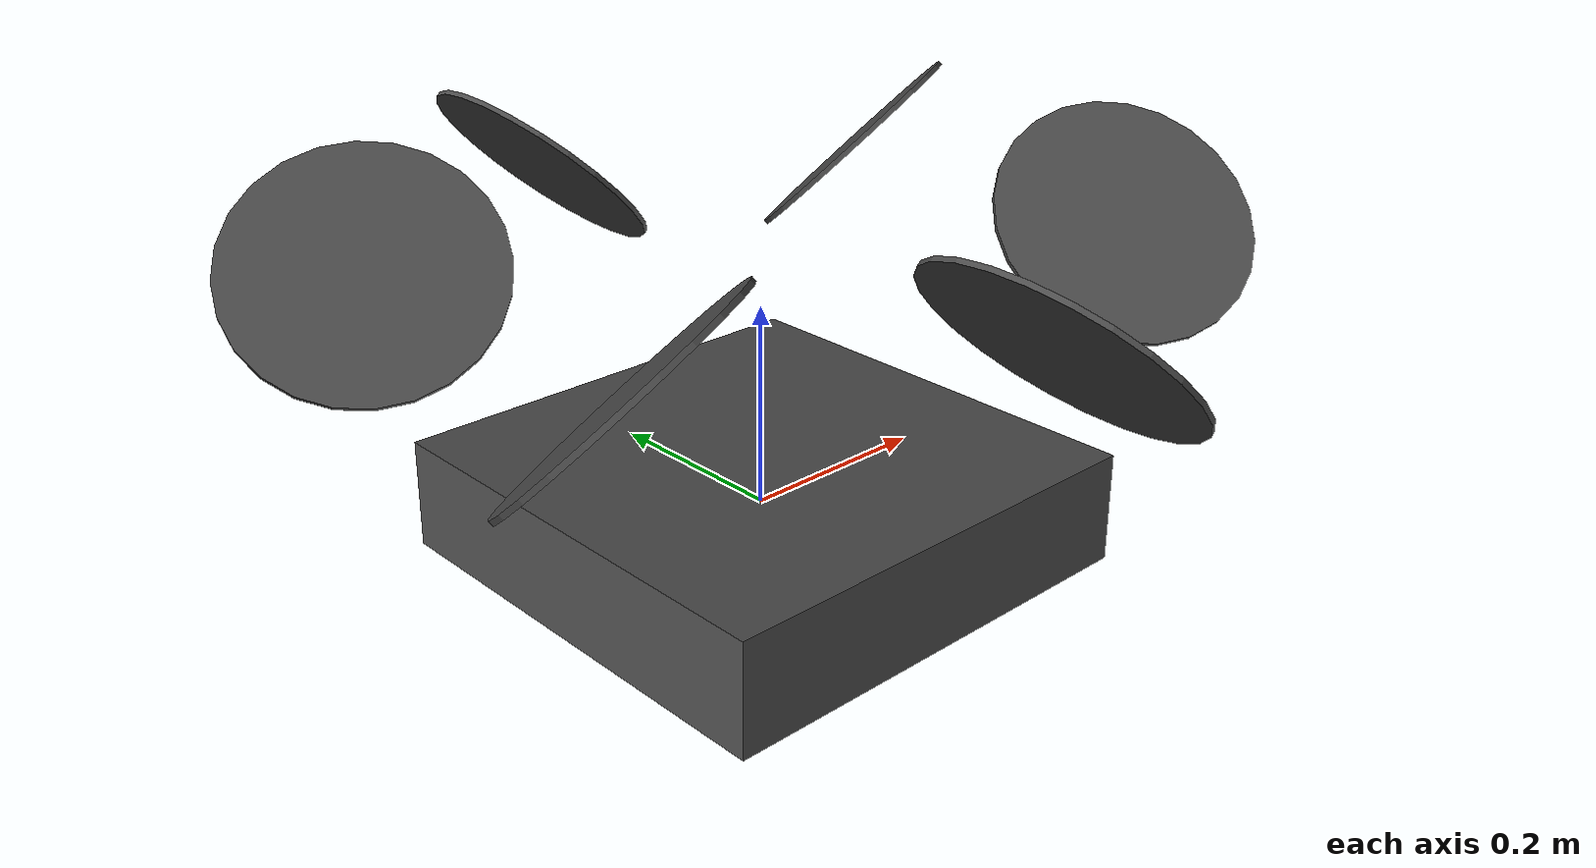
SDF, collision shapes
<!-- DO NOT EDIT: Generated from peach_fa.sdf.jinja -->
<?xml version="1.0"?>
<sdf version='1.6'>
  <model name='peach_fa'>
	<link name='base_link'>
      <pose>0 0 0 0 0 0</pose>
      <inertial>
        <pose>0 0 0 0 0 0</pose>
        <mass>1.5</mass>
        <inertia>
          <ixx>0.029125</ixx>
          <ixy>0</ixy>
          <ixz>0</ixz>
          <iyy>0.029125</iyy>
          <iyz>0</iyz>
          <izz>0.055225</izz>
        </inertia>
      </inertial>
      <collision name='base_link_collision'>
        <pose>0 0 0 0 0 0</pose>
        <geometry>
          <box>
            <size>0.47 0.47 0.11</size>
          </box>
        </geometry>
        <surface>
          <contact>
            <ode>
              <min_depth>0.001</min_depth>
              <max_vel>0</max_vel>
            </ode>
          </contact>
          <friction>
            <ode/>
          </friction>
        </surface>
      </collision>
      <visual name='base_link_visual'>
		<pose>0.34 -0.38 0 0 0 1.57</pose>
        <geometry>
          <mesh>
            <uri>model://peach_fa/meshes/peach_mesh.STL</uri>
          </mesh>
        </geometry>
        <material>
          <script>
            <name>Gazebo/DarkGrey</name>
            <uri>file://media/materials/scripts/gazebo.material</uri>
          </script>
        </material>
      </visual>
      <gravity>1</gravity>
      <velocity_decay/>
    </link>
    <link name='/imu_link'>
      <pose>0 0 0 0 0 0</pose>
      <inertial>
        <pose>0 0 0 0 0 0</pose>
        <mass>0.015</mass>
        <inertia>
          <ixx>1e-05</ixx>
          <ixy>0</ixy>
          <ixz>0</ixz>
          <iyy>1e-05</iyy>
          <iyz>0</iyz>
          <izz>1e-05</izz>
        </inertia>
      </inertial>
    </link>
    <joint name='/imu_joint' type='revolute'>
      <child>/imu_link</child>
      <parent>base_link</parent>
      <axis>
        <xyz>1 0 0</xyz>
        <limit>
          <lower>0</lower>
          <upper>0</upper>
          <effort>0</effort>
          <velocity>0</velocity>
        </limit>
        <dynamics>
          <spring_reference>0</spring_reference>
          <spring_stiffness>0</spring_stiffness>
        </dynamics>
        <use_parent_model_frame>1</use_parent_model_frame>
      </axis>
    </joint>

	<!-- ROTOR 0 -->
    <link name='rotor_0'>
	  <pose>0 -0.338 0.26 0 0.785398 0</pose>
      <inertial>
        <pose>0 0 0 0 0 0</pose>
        <mass>0.005</mass>
        <inertia>
          <ixx>9.75e-07</ixx>
          <ixy>0</ixy>
          <ixz>0</ixz>
          <iyy>0.000273104</iyy>
          <iyz>0</iyz>
          <izz>0.000274004</izz>
        </inertia>
      </inertial>
      <collision name='rotor_0_collision'>
        <pose>0 0 0 0 0 0</pose>
        <geometry>
          <cylinder>
            <length>0.005</length>
            <radius>0.128</radius>
          </cylinder>
        </geometry>
        <surface>
          <contact>
            <ode/>
          </contact>
          <friction>
            <ode/>
          </friction>
        </surface>
      </collision>
      <visual name='rotor_0_visual'>
        <geometry>
          <box><size>0.25 0.03 0.002</size></box>
        </geometry>
        <material>
           <ambient>0.3 0.3 0.3 01</ambient>
          <diffuse>0.3 0.3 0.3 01</diffuse>
        </material>
        <material>
          <script>
            <name>Gazebo/DarkGrey</name>
            <uri>file://media/materials/scripts/gazebo.material</uri>
          </script>
        </material>
      </visual>
      <gravity>1</gravity>
      <velocity_decay/>
    </link>
    <joint name='rotor_0_joint' type='revolute'>
      <child>rotor_0</child>
      <parent>base_link</parent>
      <axis>
        <xyz>0 0 1</xyz>
        <limit>
          <lower>-1e+16</lower>
          <upper>1e+16</upper>
        </limit>
        <dynamics>
          <spring_reference>0</spring_reference>
          <spring_stiffness>0</spring_stiffness>
        </dynamics>
      </axis>
    </joint>

	<!-- ROTOR 1 -->
    <link name='rotor_1'>
	  <pose>-0 0.338 0.26 0 -0.785398 3.14159</pose>
      <inertial>
        <pose>0 0 0 0 0 0</pose>
        <mass>0.005</mass>
        <inertia>
          <ixx>9.75e-07</ixx>
          <ixy>0</ixy>
          <ixz>0</ixz>
          <iyy>0.000273104</iyy>
          <iyz>0</iyz>
          <izz>0.000274004</izz>
        </inertia>
      </inertial>
      <collision name='rotor_1_collision'>
        <pose>0 0 0 0 0 0</pose>
        <geometry>
          <cylinder>
            <length>0.005</length>
            <radius>0.128</radius>
          </cylinder>
        </geometry>
        <surface>
          <contact>
            <ode/>
          </contact>
          <friction>
            <ode/>
          </friction>
        </surface>
      </collision>
      <visual name='rotor_1_visual'>
        <geometry>
          <box><size>0.25 0.03 0.002</size></box>
        </geometry>
        <material>
           <ambient>0.3 0.3 0.3 01</ambient>
          <diffuse>0.3 0.3 0.3 01</diffuse>
        </material>
        <material>
          <script>
            <name>Gazebo/DarkGrey</name>
            <uri>file://media/materials/scripts/gazebo.material</uri>
          </script>
        </material>
      </visual>
      <gravity>1</gravity>
      <velocity_decay/>
    </link>
    <joint name='rotor_1_joint' type='revolute'>
      <child>rotor_1</child>
      <parent>base_link</parent>
      <axis>
        <xyz>0 0 1</xyz>
        <limit>
          <lower>-1e+16</lower>
          <upper>1e+16</upper>
        </limit>
        <dynamics>
          <spring_reference>0</spring_reference>
          <spring_stiffness>0</spring_stiffness>
        </dynamics>
      </axis>
    </joint>

	<!-- ROTOR 2 -->
    <link name='rotor_2'>
	  <pose>0.3 0.18 0.26 0 0.785398 2.0944</pose>
      <inertial>
        <pose>0 0 0 0 0 0</pose>
        <mass>0.005</mass>
        <inertia>
          <ixx>9.75e-07</ixx>
          <ixy>0</ixy>
          <ixz>0</ixz>
          <iyy>0.000273104</iyy>
          <iyz>0</iyz>
          <izz>0.000274004</izz>
        </inertia>
      </inertial>
      <collision name='rotor_2_collision'>
        <pose>0 0 0 0 0 0</pose>
        <geometry>
          <cylinder>
            <length>0.005</length>
            <radius>0.128</radius>
          </cylinder>
        </geometry>
        <surface>
          <contact>
            <ode/>
          </contact>
          <friction>
            <ode/>
          </friction>
        </surface>
      </collision>
      <visual name='rotor_2_visual'>
        <geometry>
          <box><size>0.25 0.03 0.002</size></box>
        </geometry>
        <material>
           <ambient>0.3 0.3 0.3 01</ambient>
          <diffuse>0.3 0.3 0.3 01</diffuse>
        </material>
        <material>
          <script>
            <name>Gazebo/DarkGrey</name>
            <uri>file://media/materials/scripts/gazebo.material</uri>
          </script>
        </material>
      </visual>
      <gravity>1</gravity>
      <velocity_decay/>
    </link>
    <joint name='rotor_2_joint' type='revolute'>
      <child>rotor_2</child>
      <parent>base_link</parent>
      <axis>
        <xyz>0 0 1</xyz>
        <limit>
          <lower>-1e+16</lower>
          <upper>1e+16</upper>
        </limit>
        <dynamics>
          <spring_reference>0</spring_reference>
          <spring_stiffness>0</spring_stiffness>
        </dynamics>
      </axis>
    </joint>

	<!-- ROTOR 3 -->
    <link name='rotor_3'>
	  <pose>-0.3 -0.18 0.26 0 -0.785398 -1.0472</pose>
      <inertial>
        <pose>0 0 0 0 0 0</pose>
        <mass>0.005</mass>
        <inertia>
          <ixx>9.75e-07</ixx>
          <ixy>0</ixy>
          <ixz>0</ixz>
          <iyy>0.000273104</iyy>
          <iyz>0</iyz>
          <izz>0.000274004</izz>
        </inertia>
      </inertial>
      <collision name='rotor_3_collision'>
        <pose>0 0 0 0 0 0</pose>
        <geometry>
          <cylinder>
            <length>0.005</length>
            <radius>0.128</radius>
          </cylinder>
        </geometry>
        <surface>
          <contact>
            <ode/>
          </contact>
          <friction>
            <ode/>
          </friction>
        </surface>
      </collision>
      <visual name='rotor_3_visual'>
        <geometry>
          <box><size>0.25 0.03 0.002</size></box>
        </geometry>
        <material>
           <ambient>0.3 0.3 0.3 01</ambient>
          <diffuse>0.3 0.3 0.3 01</diffuse>
        </material>
        <material>
          <script>
            <name>Gazebo/DarkGrey</name>
            <uri>file://media/materials/scripts/gazebo.material</uri>
          </script>
        </material>
      </visual>
      <gravity>1</gravity>
      <velocity_decay/>
    </link>
    <joint name='rotor_3_joint' type='revolute'>
      <child>rotor_3</child>
      <parent>base_link</parent>
      <axis>
        <xyz>0 0 1</xyz>
        <limit>
          <lower>-1e+16</lower>
          <upper>1e+16</upper>
        </limit>
        <dynamics>
          <spring_reference>0</spring_reference>
          <spring_stiffness>0</spring_stiffness>
        </dynamics>
      </axis>
    </joint>

	<!-- ROTOR 4 -->
    <link name='rotor_4'>
	<pose>0.3 -0.18 0.26 0 -0.785398 1.0472</pose>
      <inertial>
        <pose>0 0 0 0 0 0</pose>
        <mass>0.005</mass>
        <inertia>
          <ixx>9.75e-07</ixx>
          <ixy>0</ixy>
          <ixz>0</ixz>
          <iyy>0.000273104</iyy>
          <iyz>0</iyz>
          <izz>0.000274004</izz>
        </inertia>
      </inertial>
      <collision name='rotor_4_collision'>
        <pose>0 0 0 0 0 0</pose>
        <geometry>
          <cylinder>
            <length>0.005</length>
            <radius>0.128</radius>
          </cylinder>
        </geometry>
        <surface>
          <contact>
            <ode/>
          </contact>
          <friction>
            <ode/>
          </friction>
        </surface>
      </collision>
      <visual name='rotor_4_visual'>
        <geometry>
          <box><size>0.25 0.03 0.002</size></box>
        </geometry>
        <material>
           <ambient>0.3 0.3 0.3 01</ambient>
          <diffuse>0.3 0.3 0.3 01</diffuse>
        </material>
        <material>
          <script>
            <name>Gazebo/DarkGrey</name>
            <uri>file://media/materials/scripts/gazebo.material</uri>
          </script>
        </material>
      </visual>
      <gravity>1</gravity>
      <velocity_decay/>
    </link>
    <joint name='rotor_4_joint' type='revolute'>
      <child>rotor_4</child>
      <parent>base_link</parent>
      <axis>
        <xyz>0 0 1</xyz>
        <limit>
          <lower>-1e+16</lower>
          <upper>1e+16</upper>
        </limit>
        <dynamics>
          <spring_reference>0</spring_reference>
          <spring_stiffness>0</spring_stiffness>
        </dynamics>
      </axis>
    </joint>

	<!-- ROTOR 5 -->
    <link name='rotor_5'>
	  <pose>-0.3 0.18 0.26 0 0.785398 -2.0944</pose>
      <inertial>
        <pose>0 0 0 0 0 0</pose>
        <mass>0.005</mass>
        <inertia>
          <ixx>9.75e-07</ixx>
          <ixy>0</ixy>
          <ixz>0</ixz>
          <iyy>0.000273104</iyy>
          <iyz>0</iyz>
          <izz>0.000274004</izz>
        </inertia>
      </inertial>
      <collision name='rotor_5_collision'>
        <pose>0 0 0 0 0 0</pose>
        <geometry>
          <cylinder>
            <length>0.005</length>
            <radius>0.128</radius>
          </cylinder>
        </geometry>
        <surface>
          <contact>
            <ode/>
          </contact>
          <friction>
            <ode/>
          </friction>
        </surface>
      </collision>
      <visual name='rotor_5_visual'>
        <geometry>
          <box><size>0.25 0.03 0.002</size></box>
        </geometry>
        <material>
           <ambient>0.3 0.3 0.3 01</ambient>
          <diffuse>0.3 0.3 0.3 01</diffuse>
        </material>
        <material>
          <script>
            <name>Gazebo/DarkGrey</name>
            <uri>file://media/materials/scripts/gazebo.material</uri>
          </script>
        </material>
      </visual>
      <gravity>1</gravity>
      <velocity_decay/>
    </link>
    <joint name='rotor_5_joint' type='revolute'>
      <child>rotor_5</child>
      <parent>base_link</parent>
      <axis>
        <xyz>0 0 1</xyz>
        <limit>
          <lower>-1e+16</lower>
          <upper>1e+16</upper>
        </limit>
        <dynamics>
          <spring_reference>0</spring_reference>
          <spring_stiffness>0</spring_stiffness>
        </dynamics>
      </axis>
    </joint>

    <plugin name='rosbag' filename='libgazebo_multirotor_base_plugin.so'>
      <robotNamespace/>
      <linkName>base_link</linkName>
      <rotorVelocitySlowdownSim>10</rotorVelocitySlowdownSim>
    </plugin>
    <plugin name='front_right_motor_model' filename='libgazebo_motor_model.so'>
      <robotNamespace/>
      <jointName>rotor_4_joint</jointName>
      <linkName>rotor_4</linkName>
      <turningDirection>ccw</turningDirection>
      <timeConstantUp>0.0125</timeConstantUp>
      <timeConstantDown>0.025</timeConstantDown>
      <maxRotVelocity>1100</maxRotVelocity>
      <motorConstant>5.84e-06</motorConstant>
      <momentConstant>0.06</momentConstant>
      <commandSubTopic>/gazebo/command/motor_speed</commandSubTopic>
      <motorNumber>4</motorNumber>
      <rotorDragCoefficient>0.000175</rotorDragCoefficient>
      <rollingMomentCoefficient>1e-06</rollingMomentCoefficient>
      <motorSpeedPubTopic>/motor_speed/4</motorSpeedPubTopic>
      <rotorVelocitySlowdownSim>10</rotorVelocitySlowdownSim>
    </plugin>
    <plugin name='back_left_motor_model' filename='libgazebo_motor_model.so'>
      <robotNamespace/>
      <jointName>rotor_5_joint</jointName>
      <linkName>rotor_5</linkName>
      <turningDirection>cw</turningDirection>
      <timeConstantUp>0.0125</timeConstantUp>
      <timeConstantDown>0.025</timeConstantDown>
      <maxRotVelocity>1100</maxRotVelocity>
      <motorConstant>5.84e-06</motorConstant>
      <momentConstant>0.06</momentConstant>
      <commandSubTopic>/gazebo/command/motor_speed</commandSubTopic>
      <motorNumber>5</motorNumber>
      <rotorDragCoefficient>0.000175</rotorDragCoefficient>
      <rollingMomentCoefficient>1e-06</rollingMomentCoefficient>
      <motorSpeedPubTopic>/motor_speed/5</motorSpeedPubTopic>
      <rotorVelocitySlowdownSim>10</rotorVelocitySlowdownSim>
    </plugin>
    <plugin name='front_left_motor_model' filename='libgazebo_motor_model.so'>
      <robotNamespace/>
      <jointName>rotor_2_joint</jointName>
      <linkName>rotor_2</linkName>
      <turningDirection>cw</turningDirection>
      <timeConstantUp>0.0125</timeConstantUp>
      <timeConstantDown>0.025</timeConstantDown>
      <maxRotVelocity>1100</maxRotVelocity>
      <motorConstant>5.84e-06</motorConstant>
      <momentConstant>0.06</momentConstant>
      <commandSubTopic>/gazebo/command/motor_speed</commandSubTopic>
      <motorNumber>2</motorNumber>
      <rotorDragCoefficient>0.000175</rotorDragCoefficient>
      <rollingMomentCoefficient>1e-06</rollingMomentCoefficient>
      <motorSpeedPubTopic>/motor_speed/2</motorSpeedPubTopic>
      <rotorVelocitySlowdownSim>10</rotorVelocitySlowdownSim>
    </plugin>
    <plugin name='back_right_motor_model' filename='libgazebo_motor_model.so'>
      <robotNamespace/>
      <jointName>rotor_3_joint</jointName>
      <linkName>rotor_3</linkName>
      <turningDirection>ccw</turningDirection>
      <timeConstantUp>0.0125</timeConstantUp>
      <timeConstantDown>0.025</timeConstantDown>
      <maxRotVelocity>1100</maxRotVelocity>
      <motorConstant>5.84e-06</motorConstant>
      <momentConstant>0.06</momentConstant>
      <commandSubTopic>/gazebo/command/motor_speed</commandSubTopic>
      <motorNumber>3</motorNumber>
      <rotorDragCoefficient>0.000175</rotorDragCoefficient>
      <rollingMomentCoefficient>1e-06</rollingMomentCoefficient>
      <motorSpeedPubTopic>/motor_speed/3</motorSpeedPubTopic>
      <rotorVelocitySlowdownSim>10</rotorVelocitySlowdownSim>
    </plugin>
	<plugin name='right_motor_model' filename='libgazebo_motor_model.so'>
      <robotNamespace/>
      <jointName>rotor_0_joint</jointName>
      <linkName>rotor_0</linkName>
      <turningDirection>cw</turningDirection>
      <timeConstantUp>0.0125</timeConstantUp>
      <timeConstantDown>0.025</timeConstantDown>
      <maxRotVelocity>1100</maxRotVelocity>
      <motorConstant>5.84e-06</motorConstant>
      <momentConstant>0.06</momentConstant>
      <commandSubTopic>/gazebo/command/motor_speed</commandSubTopic>
      <motorNumber>0</motorNumber>
      <rotorDragCoefficient>0.000175</rotorDragCoefficient>
      <rollingMomentCoefficient>1e-06</rollingMomentCoefficient>
      <motorSpeedPubTopic>/motor_speed/0</motorSpeedPubTopic>
      <rotorVelocitySlowdownSim>10</rotorVelocitySlowdownSim>
    </plugin>
	<plugin name='left_motor_model' filename='libgazebo_motor_model.so'>
      <robotNamespace/>
      <jointName>rotor_1_joint</jointName>
      <linkName>rotor_1</linkName>
      <turningDirection>ccw</turningDirection>
      <timeConstantUp>0.0125</timeConstantUp>
      <timeConstantDown>0.025</timeConstantDown>
      <maxRotVelocity>1100</maxRotVelocity>
      <motorConstant>5.84e-06</motorConstant>
      <momentConstant>0.06</momentConstant>
      <commandSubTopic>/gazebo/command/motor_speed</commandSubTopic>
      <motorNumber>1</motorNumber>
      <rotorDragCoefficient>0.000175</rotorDragCoefficient>
      <rollingMomentCoefficient>1e-06</rollingMomentCoefficient>
      <motorSpeedPubTopic>/motor_speed/1</motorSpeedPubTopic>
      <rotorVelocitySlowdownSim>10</rotorVelocitySlowdownSim>
    </plugin>

    <include>
      <uri>model://gps</uri>
      <pose>0 0 0.25 0 0 0</pose>
      <name>gps0</name>
    </include>
    <joint name='gps0_joint' type='fixed'>
      <child>gps0::link</child>
      <parent>base_link</parent>
    </joint>
    <plugin name='groundtruth_plugin' filename='libgazebo_groundtruth_plugin.so'>
      <robotNamespace/>
    </plugin>
    <plugin name='magnetometer_plugin' filename='libgazebo_magnetometer_plugin.so'>
      <robotNamespace/>
      <pubRate>100</pubRate>
      <noiseDensity>0.0004</noiseDensity>
      <randomWalk>6.4e-06</randomWalk>
      <biasCorrelationTime>600</biasCorrelationTime>
      <magTopic>/mag</magTopic>
    </plugin>
    <plugin name='barometer_plugin' filename='libgazebo_barometer_plugin.so'>
      <robotNamespace/>
      <pubRate>50</pubRate>
      <baroTopic>/baro</baroTopic>
      <baroDriftPaPerSec>0</baroDriftPaPerSec>
    </plugin>
    <plugin name='mavlink_interface' filename='libgazebo_mavlink_interface.so'>
      <robotNamespace/>
      <imuSubTopic>/imu</imuSubTopic>
      <magSubTopic>/mag</magSubTopic>
      <baroSubTopic>/baro</baroSubTopic>
      <mavlink_addr>INADDR_ANY</mavlink_addr>
      <mavlink_tcp_port>4560</mavlink_tcp_port>
      <mavlink_udp_port>14560</mavlink_udp_port>
      <serialEnabled>0</serialEnabled>
      <serialDevice>/dev/ttyACM0</serialDevice>
      <baudRate>921600</baudRate>
      <qgc_addr>INADDR_ANY</qgc_addr>
      <qgc_udp_port>14550</qgc_udp_port>
      <sdk_addr>INADDR_ANY</sdk_addr>
      <sdk_udp_port>14540</sdk_udp_port>
      <hil_mode>0</hil_mode>
      <hil_state_level>0</hil_state_level>
      <send_vision_estimation>0</send_vision_estimation>
      <send_odometry>1</send_odometry>
      <enable_lockstep>1</enable_lockstep>
      <use_tcp>1</use_tcp>
      <motorSpeedCommandPubTopic>/gazebo/command/motor_speed</motorSpeedCommandPubTopic>
      <control_channels>
        <channel name='rotor0'>
          <input_index>0</input_index>
          <input_offset>0</input_offset>
          <input_scaling>1000</input_scaling>
          <zero_position_disarmed>0</zero_position_disarmed>
          <zero_position_armed>100</zero_position_armed>
          <joint_control_type>velocity</joint_control_type>
        </channel>
        <channel name='rotor1'>
          <input_index>1</input_index>
          <input_offset>0</input_offset>
          <input_scaling>1000</input_scaling>
          <zero_position_disarmed>0</zero_position_disarmed>
          <zero_position_armed>100</zero_position_armed>
          <joint_control_type>velocity</joint_control_type>
        </channel>
        <channel name='rotor2'>
          <input_index>2</input_index>
          <input_offset>0</input_offset>
          <input_scaling>1000</input_scaling>
          <zero_position_disarmed>0</zero_position_disarmed>
          <zero_position_armed>100</zero_position_armed>
          <joint_control_type>velocity</joint_control_type>
        </channel>
        <channel name='rotor3'>
          <input_index>3</input_index>
          <input_offset>0</input_offset>
          <input_scaling>1000</input_scaling>
          <zero_position_disarmed>0</zero_position_disarmed>
          <zero_position_armed>100</zero_position_armed>
          <joint_control_type>velocity</joint_control_type>
        </channel>
        <channel name='rotor4'>
          <input_index>4</input_index>
          <input_offset>0</input_offset>
          <input_scaling>1000</input_scaling>
          <zero_position_disarmed>0</zero_position_disarmed>
          <zero_position_armed>100</zero_position_armed>
          <joint_control_type>velocity</joint_control_type>
        </channel>
        <channel name='rotor5'>
          <input_index>5</input_index>
          <input_offset>0</input_offset>
          <input_scaling>1000</input_scaling>
          <zero_position_disarmed>0</zero_position_disarmed>
          <zero_position_armed>100</zero_position_armed>
          <joint_control_type>velocity</joint_control_type>
        </channel>
      </control_channels>
    </plugin>
    <static>0</static>
    <plugin name='rotors_gazebo_imu_plugin' filename='libgazebo_imu_plugin.so'>
      <robotNamespace/>
      <linkName>/imu_link</linkName>
      <imuTopic>/imu</imuTopic>
      <gyroscopeNoiseDensity>0.00018665</gyroscopeNoiseDensity>
      <gyroscopeRandomWalk>3.8785e-05</gyroscopeRandomWalk>
      <gyroscopeBiasCorrelationTime>1000.0</gyroscopeBiasCorrelationTime>
      <gyroscopeTurnOnBiasSigma>0.0087</gyroscopeTurnOnBiasSigma>
      <accelerometerNoiseDensity>0.00186</accelerometerNoiseDensity>
      <accelerometerRandomWalk>0.006</accelerometerRandomWalk>
      <accelerometerBiasCorrelationTime>300.0</accelerometerBiasCorrelationTime>
      <accelerometerTurnOnBiasSigma>0.196</accelerometerTurnOnBiasSigma>
    </plugin>
  </model>
</sdf>

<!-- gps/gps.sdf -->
<sdf version="1.6">
  <model name="gps">
    <link name="link">
      <pose>0 0 0 0 0 0</pose>
      <inertial>
        <pose>0 0 0 0 0 0</pose>
        <mass>0.015</mass>
        <inertia>
          <ixx>1e-05</ixx>
          <ixy>0</ixy>
          <ixz>0</ixz>
          <iyy>1e-05</iyy>
          <iyz>0</iyz>
          <izz>1e-05</izz>
        </inertia>
      </inertial>
      <visual name="visual">
        <geometry>
          <cylinder>
            <radius>0.01</radius>
            <length>0.002</length>
          </cylinder>
        </geometry>
        <material>
          <script>
            <name>Gazebo/Black</name>
          </script>
        </material>
      </visual>
      <sensor name="gps" type="gps">
        <pose>0 0 0 0 0 0</pose>
        <update_rate>5.0</update_rate>
        <always_on>true</always_on>
        <visualize>false</visualize>
        <!-- GpsSensor noise currently not used -->
        <plugin name="gps_plugin" filename="libgazebo_geocoordinate_gps_plugin.so">
          <robotNamespace></robotNamespace>
          <gpsNoise>true</gpsNoise>
          <gpsXYRandomWalk>2.0</gpsXYRandomWalk>
          <gpsZRandomWalk>4.0</gpsZRandomWalk>
          <gpsXYNoiseDensity>2.0e-4</gpsXYNoiseDensity>
          <gpsZNoiseDensity>4.0e-4</gpsZNoiseDensity>
          <gpsVXYNoiseDensity>0.2</gpsVXYNoiseDensity>
          <gpsVZNoiseDensity>0.4</gpsVZNoiseDensity>
        </plugin>
      </sensor>
    </link>
  </model>
</sdf>
